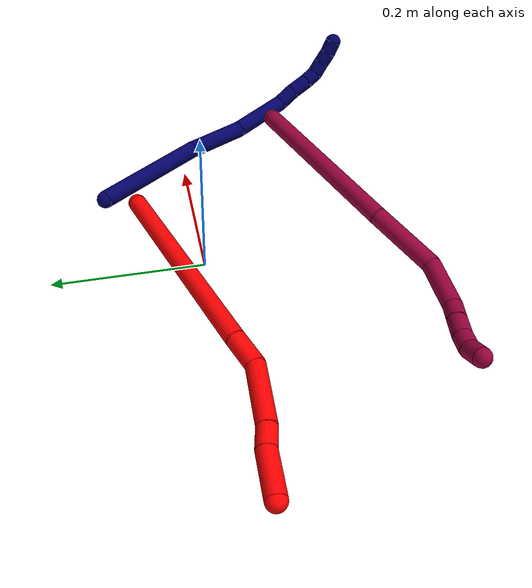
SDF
<sdf version="1.7">
 <world name="default">
  <model name="2">
   <static>0</static>
   <link name="2">
    <collision name="collision-cylinder-e_1_1_4">
     <pose>-0.134537 -0.057209 0.006968 1.4496 -1.16607 -1.05724</pose>
     <geometry><cylinder><radius>0.0125</radius><length>0.292722</length></cylinder></geometry>
     <surface>
      <friction><ode><mu>1.16</mu><mu2>1.16</mu2><slip1>0</slip1><slip2>0</slip2></ode></friction>
      <contact><ode><kp>1e+06</kp><kd>1</kd><max_vel>0</max_vel><min_depth>0.001</min_depth></ode></contact>
     </surface>
    </collision>
    <visual name="visual-cylinder-e_1_1_4">
     <pose>-0.134537 -0.057209 0.006968 1.4496 -1.16607 -1.05724</pose>
     <geometry><cylinder><radius>0.0125</radius><length>0.292722</length></cylinder></geometry>
     <material><ambient>1 0 0 1</ambient></material>
    </visual>
    <collision name="collision-cylinder-e_2_4_5">
     <pose>-0.288937 -0.12131 0.01206 1.83654 -1.22562 -1.48758</pose>
     <geometry><cylinder><radius>0.0125</radius><length>0.042216</length></cylinder></geometry>
     <surface>
      <friction><ode><mu>1.16</mu><mu2>1.16</mu2><slip1>0</slip1><slip2>0</slip2></ode></friction>
      <contact><ode><kp>1e+06</kp><kd>1</kd><max_vel>0</max_vel><min_depth>0.001</min_depth></ode></contact>
     </surface>
    </collision>
    <visual name="visual-cylinder-e_2_4_5">
     <pose>-0.288937 -0.12131 0.01206 1.83654 -1.22562 -1.48758</pose>
     <geometry><cylinder><radius>0.0125</radius><length>0.042216</length></cylinder></geometry>
     <material><ambient>1 0 0 1</ambient></material>
    </visual>
    <collision name="collision-cylinder-e_3_5_6">
     <pose>-0.346643 -0.13461 0.023579 0.446233 -1.19687 -0.306979</pose>
     <geometry><cylinder><radius>0.0125</radius><length>0.081304</length></cylinder></geometry>
     <surface>
      <friction><ode><mu>1.16</mu><mu2>1.16</mu2><slip1>0</slip1><slip2>0</slip2></ode></friction>
      <contact><ode><kp>1e+06</kp><kd>1</kd><max_vel>0</max_vel><min_depth>0.001</min_depth></ode></contact>
     </surface>
    </collision>
    <visual name="visual-cylinder-e_3_5_6">
     <pose>-0.346643 -0.13461 0.023579 0.446233 -1.19687 -0.306979</pose>
     <geometry><cylinder><radius>0.0125</radius><length>0.081304</length></cylinder></geometry>
     <material><ambient>1 0 0 1</ambient></material>
    </visual>
    <collision name="collision-cylinder-e_4_6_7">
     <pose>-0.396622 -0.140959 0.042822 -0.010066 -1.12175 0.006323</pose>
     <geometry><cylinder><radius>0.0125</radius><length>0.026944</length></cylinder></geometry>
     <surface>
      <friction><ode><mu>1.16</mu><mu2>1.16</mu2><slip1>0</slip1><slip2>0</slip2></ode></friction>
      <contact><ode><kp>1e+06</kp><kd>1</kd><max_vel>0</max_vel><min_depth>0.001</min_depth></ode></contact>
     </surface>
    </collision>
    <visual name="visual-cylinder-e_4_6_7">
     <pose>-0.396622 -0.140959 0.042822 -0.010066 -1.12175 0.006323</pose>
     <geometry><cylinder><radius>0.0125</radius><length>0.026944</length></cylinder></geometry>
     <material><ambient>1 0 0 1</ambient></material>
    </visual>
    <collision name="collision-cylinder-e_5_7_2">
     <pose>-0.435147 -0.14582 0.057963 0.486879 -1.19163 -0.333657</pose>
     <geometry><cylinder><radius>0.0125</radius><length>0.056814</length></cylinder></geometry>
     <surface>
      <friction><ode><mu>1.16</mu><mu2>1.16</mu2><slip1>0</slip1><slip2>0</slip2></ode></friction>
      <contact><ode><kp>1e+06</kp><kd>1</kd><max_vel>0</max_vel><min_depth>0.001</min_depth></ode></contact>
     </surface>
    </collision>
    <visual name="visual-cylinder-e_5_7_2">
     <pose>-0.435147 -0.14582 0.057963 0.486879 -1.19163 -0.333657</pose>
     <geometry><cylinder><radius>0.0125</radius><length>0.056814</length></cylinder></geometry>
     <material><ambient>1 0 0 1</ambient></material>
    </visual>
    <collision name="collision-sphere-2">
     <pose>-0.461537 -0.150739 0.067256 0 -0 0</pose>
     <geometry><sphere><radius>0.0125</radius></sphere></geometry>
     <surface>
      <friction><ode><mu>1.16</mu><mu2>1.16</mu2><slip1>0</slip1><slip2>0</slip2></ode></friction>
      <contact><ode><kp>1e+06</kp><kd>1</kd><max_vel>0</max_vel><min_depth>0.001</min_depth></ode></contact>
     </surface>
    </collision>
    <visual name="visual-sphere-2">
     <pose>-0.461537 -0.150739 0.067256 0 -0 0</pose>
     <geometry><sphere><radius>0.0125</radius></sphere></geometry>
     <material><ambient>1 0 0 1</ambient></material>
    </visual>
    <collision name="collision-sphere-7">
     <pose>-0.408758 -0.1409 0.04867 0 -0 0</pose>
     <geometry><sphere><radius>0.0125</radius></sphere></geometry>
     <surface>
      <friction><ode><mu>1.16</mu><mu2>1.16</mu2><slip1>0</slip1><slip2>0</slip2></ode></friction>
      <contact><ode><kp>1e+06</kp><kd>1</kd><max_vel>0</max_vel><min_depth>0.001</min_depth></ode></contact>
     </surface>
    </collision>
    <visual name="visual-sphere-7">
     <pose>-0.408758 -0.1409 0.04867 0 -0 0</pose>
     <geometry><sphere><radius>0.0125</radius></sphere></geometry>
     <material><ambient>1 0 0 1</ambient></material>
    </visual>
    <collision name="collision-sphere-6">
     <pose>-0.384486 -0.141018 0.036974 0 -0 0</pose>
     <geometry><sphere><radius>0.0125</radius></sphere></geometry>
     <surface>
      <friction><ode><mu>1.16</mu><mu2>1.16</mu2><slip1>0</slip1><slip2>0</slip2></ode></friction>
      <contact><ode><kp>1e+06</kp><kd>1</kd><max_vel>0</max_vel><min_depth>0.001</min_depth></ode></contact>
     </surface>
    </collision>
    <visual name="visual-sphere-6">
     <pose>-0.384486 -0.141018 0.036974 0 -0 0</pose>
     <geometry><sphere><radius>0.0125</radius></sphere></geometry>
     <material><ambient>1 0 0 1</ambient></material>
    </visual>
    <collision name="collision-sphere-5">
     <pose>-0.3088 -0.128201 0.010184 0 -0 0</pose>
     <geometry><sphere><radius>0.0125</radius></sphere></geometry>
     <surface>
      <friction><ode><mu>1.16</mu><mu2>1.16</mu2><slip1>0</slip1><slip2>0</slip2></ode></friction>
      <contact><ode><kp>1e+06</kp><kd>1</kd><max_vel>0</max_vel><min_depth>0.001</min_depth></ode></contact>
     </surface>
    </collision>
    <visual name="visual-sphere-5">
     <pose>-0.3088 -0.128201 0.010184 0 -0 0</pose>
     <geometry><sphere><radius>0.0125</radius></sphere></geometry>
     <material><ambient>1 0 0 1</ambient></material>
    </visual>
    <collision name="collision-sphere-1">
     <geometry><sphere><radius>0.0125</radius></sphere></geometry>
     <surface>
      <friction><ode><mu>1.16</mu><mu2>1.16</mu2><slip1>0</slip1><slip2>0</slip2></ode></friction>
      <contact><ode><kp>1e+06</kp><kd>1</kd><max_vel>0</max_vel><min_depth>0.001</min_depth></ode></contact>
     </surface>
    </collision>
    <visual name="visual-sphere-1">
     <geometry><sphere><radius>0.0125</radius></sphere></geometry>
     <material><ambient>1 0 0 1</ambient></material>
    </visual>
    <collision name="collision-sphere-4">
     <pose>-0.269073 -0.114418 0.013936 0 -0 0</pose>
     <geometry><sphere><radius>0.0125</radius></sphere></geometry>
     <surface>
      <friction><ode><mu>1.16</mu><mu2>1.16</mu2><slip1>0</slip1><slip2>0</slip2></ode></friction>
      <contact><ode><kp>1e+06</kp><kd>1</kd><max_vel>0</max_vel><min_depth>0.001</min_depth></ode></contact>
     </surface>
    </collision>
    <visual name="visual-sphere-4">
     <pose>-0.269073 -0.114418 0.013936 0 -0 0</pose>
     <geometry><sphere><radius>0.0125</radius></sphere></geometry>
     <material><ambient>1 0 0 1</ambient></material>
    </visual>
    <inertial>
     <pose>-0.230344 -0.089789 0.017825 0 -0 0</pose>
     <mass>0.5</mass>
     <inertia>
      <ixx>-0.000336</ixx>
      <ixy>0</ixy>
      <ixz>0</ixz>
      <iyy>0.001126</iyy>
      <iyz>0</iyz>
      <izz>0.002843</izz>
     </inertia>
    </inertial>
   </link>
   <pose>0.131443 0.076715 0.011492 -0.969111 -0.338057 0.131258</pose>
  </model>
  <model name="7">
   <static>0</static>
   <link name="7">
    <collision name="collision-cylinder-e_1_1_4">
     <pose>0.003735 0.001021 0.085104 -0.011993 0.04386 -0.000263</pose>
     <geometry><cylinder><radius>0.0125</radius><length>0.170385</length></cylinder></geometry>
     <surface>
      <friction><ode><mu>1.16</mu><mu2>1.16</mu2><slip1>0</slip1><slip2>0</slip2></ode></friction>
      <contact><ode><kp>1e+06</kp><kd>1</kd><max_vel>0</max_vel><min_depth>0.001</min_depth></ode></contact>
     </surface>
    </collision>
    <visual name="visual-cylinder-e_1_1_4">
     <pose>0.003735 0.001021 0.085104 -0.011993 0.04386 -0.000263</pose>
     <geometry><cylinder><radius>0.0125</radius><length>0.170385</length></cylinder></geometry>
     <material><ambient>0.003922 0 0.403922 1</ambient></material>
    </visual>
    <collision name="collision-cylinder-e_2_4_5">
     <pose>0.013713 -0.002404 0.214991 0.098933 0.13783 0.006834</pose>
     <geometry><cylinder><radius>0.0125</radius><length>0.090866</length></cylinder></geometry>
     <surface>
      <friction><ode><mu>1.16</mu><mu2>1.16</mu2><slip1>0</slip1><slip2>0</slip2></ode></friction>
      <contact><ode><kp>1e+06</kp><kd>1</kd><max_vel>0</max_vel><min_depth>0.001</min_depth></ode></contact>
     </surface>
    </collision>
    <visual name="visual-cylinder-e_2_4_5">
     <pose>0.013713 -0.002404 0.214991 0.098933 0.13783 0.006834</pose>
     <geometry><cylinder><radius>0.0125</radius><length>0.090866</length></cylinder></geometry>
     <material><ambient>0.003922 0 0.403922 1</ambient></material>
    </visual>
    <collision name="collision-cylinder-e_3_5_6">
     <pose>0.02038 -0.007811 0.309411 0.019392 0.008554 8.3e-05</pose>
     <geometry><cylinder><radius>0.0125</radius><length>0.099298</length></cylinder></geometry>
     <surface>
      <friction><ode><mu>1.16</mu><mu2>1.16</mu2><slip1>0</slip1><slip2>0</slip2></ode></friction>
      <contact><ode><kp>1e+06</kp><kd>1</kd><max_vel>0</max_vel><min_depth>0.001</min_depth></ode></contact>
     </surface>
    </collision>
    <visual name="visual-cylinder-e_3_5_6">
     <pose>0.02038 -0.007811 0.309411 0.019392 0.008554 8.3e-05</pose>
     <geometry><cylinder><radius>0.0125</radius><length>0.099298</length></cylinder></geometry>
     <material><ambient>0.003922 0 0.403922 1</ambient></material>
    </visual>
    <collision name="collision-cylinder-e_4_6_7">
     <pose>0.017732 -0.014946 0.372294 0.436065 -0.207221 -0.046068</pose>
     <geometry><cylinder><radius>0.0125</radius><length>0.029864</length></cylinder></geometry>
     <surface>
      <friction><ode><mu>1.16</mu><mu2>1.16</mu2><slip1>0</slip1><slip2>0</slip2></ode></friction>
      <contact><ode><kp>1e+06</kp><kd>1</kd><max_vel>0</max_vel><min_depth>0.001</min_depth></ode></contact>
     </surface>
    </collision>
    <visual name="visual-cylinder-e_4_6_7">
     <pose>0.017732 -0.014946 0.372294 0.436065 -0.207221 -0.046068</pose>
     <geometry><cylinder><radius>0.0125</radius><length>0.029864</length></cylinder></geometry>
     <material><ambient>0.003922 0 0.403922 1</ambient></material>
    </visual>
    <collision name="collision-cylinder-e_5_7_8">
     <pose>0.013212 -0.02731 0.398365 0.449749 -0.101336 -0.023199</pose>
     <geometry><cylinder><radius>0.0125</radius><length>0.028631</length></cylinder></geometry>
     <surface>
      <friction><ode><mu>1.16</mu><mu2>1.16</mu2><slip1>0</slip1><slip2>0</slip2></ode></friction>
      <contact><ode><kp>1e+06</kp><kd>1</kd><max_vel>0</max_vel><min_depth>0.001</min_depth></ode></contact>
     </surface>
    </collision>
    <visual name="visual-cylinder-e_5_7_8">
     <pose>0.013212 -0.02731 0.398365 0.449749 -0.101336 -0.023199</pose>
     <geometry><cylinder><radius>0.0125</radius><length>0.028631</length></cylinder></geometry>
     <material><ambient>0.003922 0 0.403922 1</ambient></material>
    </visual>
    <collision name="collision-cylinder-e_6_8_9">
     <pose>0.010051 -0.037112 0.420483 0.370692 -0.170115 -0.031971</pose>
     <geometry><cylinder><radius>0.0125</radius><length>0.02023</length></cylinder></geometry>
     <surface>
      <friction><ode><mu>1.16</mu><mu2>1.16</mu2><slip1>0</slip1><slip2>0</slip2></ode></friction>
      <contact><ode><kp>1e+06</kp><kd>1</kd><max_vel>0</max_vel><min_depth>0.001</min_depth></ode></contact>
     </surface>
    </collision>
    <visual name="visual-cylinder-e_6_8_9">
     <pose>0.010051 -0.037112 0.420483 0.370692 -0.170115 -0.031971</pose>
     <geometry><cylinder><radius>0.0125</radius><length>0.02023</length></cylinder></geometry>
     <material><ambient>0.003922 0 0.403922 1</ambient></material>
    </visual>
    <collision name="collision-cylinder-e_7_9_10">
     <pose>0.003388 -0.046209 0.436647 0.673611 -0.512838 -0.183097</pose>
     <geometry><cylinder><radius>0.0125</radius><length>0.020182</length></cylinder></geometry>
     <surface>
      <friction><ode><mu>1.16</mu><mu2>1.16</mu2><slip1>0</slip1><slip2>0</slip2></ode></friction>
      <contact><ode><kp>1e+06</kp><kd>1</kd><max_vel>0</max_vel><min_depth>0.001</min_depth></ode></contact>
     </surface>
    </collision>
    <visual name="visual-cylinder-e_7_9_10">
     <pose>0.003388 -0.046209 0.436647 0.673611 -0.512838 -0.183097</pose>
     <geometry><cylinder><radius>0.0125</radius><length>0.020182</length></cylinder></geometry>
     <material><ambient>0.003922 0 0.403922 1</ambient></material>
    </visual>
    <collision name="collision-cylinder-e_8_10_11">
     <pose>-0.006213 -0.057984 0.449814 0.785047 -0.481444 -0.202567</pose>
     <geometry><cylinder><radius>0.0125</radius><length>0.020081</length></cylinder></geometry>
     <surface>
      <friction><ode><mu>1.16</mu><mu2>1.16</mu2><slip1>0</slip1><slip2>0</slip2></ode></friction>
      <contact><ode><kp>1e+06</kp><kd>1</kd><max_vel>0</max_vel><min_depth>0.001</min_depth></ode></contact>
     </surface>
    </collision>
    <visual name="visual-cylinder-e_8_10_11">
     <pose>-0.006213 -0.057984 0.449814 0.785047 -0.481444 -0.202567</pose>
     <geometry><cylinder><radius>0.0125</radius><length>0.020081</length></cylinder></geometry>
     <material><ambient>0.003922 0 0.403922 1</ambient></material>
    </visual>
    <collision name="collision-cylinder-e_9_11_2">
     <pose>-0.016811 -0.070614 0.461504 0.865735 -0.620466 -0.294142</pose>
     <geometry><cylinder><radius>0.0125</radius><length>0.020463</length></cylinder></geometry>
     <surface>
      <friction><ode><mu>1.16</mu><mu2>1.16</mu2><slip1>0</slip1><slip2>0</slip2></ode></friction>
      <contact><ode><kp>1e+06</kp><kd>1</kd><max_vel>0</max_vel><min_depth>0.001</min_depth></ode></contact>
     </surface>
    </collision>
    <visual name="visual-cylinder-e_9_11_2">
     <pose>-0.016811 -0.070614 0.461504 0.865735 -0.620466 -0.294142</pose>
     <geometry><cylinder><radius>0.0125</radius><length>0.020463</length></cylinder></geometry>
     <material><ambient>0.003922 0 0.403922 1</ambient></material>
    </visual>
    <collision name="collision-sphere-2">
     <pose>-0.022759 -0.076954 0.466899 0 -0 0</pose>
     <geometry><sphere><radius>0.0125</radius></sphere></geometry>
     <surface>
      <friction><ode><mu>1.16</mu><mu2>1.16</mu2><slip1>0</slip1><slip2>0</slip2></ode></friction>
      <contact><ode><kp>1e+06</kp><kd>1</kd><max_vel>0</max_vel><min_depth>0.001</min_depth></ode></contact>
     </surface>
    </collision>
    <visual name="visual-sphere-2">
     <pose>-0.022759 -0.076954 0.466899 0 -0 0</pose>
     <geometry><sphere><radius>0.0125</radius></sphere></geometry>
     <material><ambient>0.003922 0 0.403922 1</ambient></material>
    </visual>
    <collision name="collision-sphere-11">
     <pose>-0.010862 -0.064275 0.456109 0 -0 0</pose>
     <geometry><sphere><radius>0.0125</radius></sphere></geometry>
     <surface>
      <friction><ode><mu>1.16</mu><mu2>1.16</mu2><slip1>0</slip1><slip2>0</slip2></ode></friction>
      <contact><ode><kp>1e+06</kp><kd>1</kd><max_vel>0</max_vel><min_depth>0.001</min_depth></ode></contact>
     </surface>
    </collision>
    <visual name="visual-sphere-11">
     <pose>-0.010862 -0.064275 0.456109 0 -0 0</pose>
     <geometry><sphere><radius>0.0125</radius></sphere></geometry>
     <material><ambient>0.003922 0 0.403922 1</ambient></material>
    </visual>
    <collision name="collision-sphere-10">
     <pose>-0.001563 -0.051694 0.443519 0 -0 0</pose>
     <geometry><sphere><radius>0.0125</radius></sphere></geometry>
     <surface>
      <friction><ode><mu>1.16</mu><mu2>1.16</mu2><slip1>0</slip1><slip2>0</slip2></ode></friction>
      <contact><ode><kp>1e+06</kp><kd>1</kd><max_vel>0</max_vel><min_depth>0.001</min_depth></ode></contact>
     </surface>
    </collision>
    <visual name="visual-sphere-10">
     <pose>-0.001563 -0.051694 0.443519 0 -0 0</pose>
     <geometry><sphere><radius>0.0125</radius></sphere></geometry>
     <material><ambient>0.003922 0 0.403922 1</ambient></material>
    </visual>
    <collision name="collision-sphere-9">
     <pose>0.008339 -0.040724 0.429775 0 -0 0</pose>
     <geometry><sphere><radius>0.0125</radius></sphere></geometry>
     <surface>
      <friction><ode><mu>1.16</mu><mu2>1.16</mu2><slip1>0</slip1><slip2>0</slip2></ode></friction>
      <contact><ode><kp>1e+06</kp><kd>1</kd><max_vel>0</max_vel><min_depth>0.001</min_depth></ode></contact>
     </surface>
    </collision>
    <visual name="visual-sphere-9">
     <pose>0.008339 -0.040724 0.429775 0 -0 0</pose>
     <geometry><sphere><radius>0.0125</radius></sphere></geometry>
     <material><ambient>0.003922 0 0.403922 1</ambient></material>
    </visual>
    <collision name="collision-sphere-4">
     <pose>0.007471 0.002041 0.170209 0 -0 0</pose>
     <geometry><sphere><radius>0.0125</radius></sphere></geometry>
     <surface>
      <friction><ode><mu>1.16</mu><mu2>1.16</mu2><slip1>0</slip1><slip2>0</slip2></ode></friction>
      <contact><ode><kp>1e+06</kp><kd>1</kd><max_vel>0</max_vel><min_depth>0.001</min_depth></ode></contact>
     </surface>
    </collision>
    <visual name="visual-sphere-4">
     <pose>0.007471 0.002041 0.170209 0 -0 0</pose>
     <geometry><sphere><radius>0.0125</radius></sphere></geometry>
     <material><ambient>0.003922 0 0.403922 1</ambient></material>
    </visual>
    <collision name="collision-sphere-1">
     <geometry><sphere><radius>0.0125</radius></sphere></geometry>
     <surface>
      <friction><ode><mu>1.16</mu><mu2>1.16</mu2><slip1>0</slip1><slip2>0</slip2></ode></friction>
      <contact><ode><kp>1e+06</kp><kd>1</kd><max_vel>0</max_vel><min_depth>0.001</min_depth></ode></contact>
     </surface>
    </collision>
    <visual name="visual-sphere-1">
     <geometry><sphere><radius>0.0125</radius></sphere></geometry>
     <material><ambient>0.003922 0 0.403922 1</ambient></material>
    </visual>
    <collision name="collision-sphere-8">
     <pose>0.011764 -0.033501 0.411191 0 -0 0</pose>
     <geometry><sphere><radius>0.0125</radius></sphere></geometry>
     <surface>
      <friction><ode><mu>1.16</mu><mu2>1.16</mu2><slip1>0</slip1><slip2>0</slip2></ode></friction>
      <contact><ode><kp>1e+06</kp><kd>1</kd><max_vel>0</max_vel><min_depth>0.001</min_depth></ode></contact>
     </surface>
    </collision>
    <visual name="visual-sphere-8">
     <pose>0.011764 -0.033501 0.411191 0 -0 0</pose>
     <geometry><sphere><radius>0.0125</radius></sphere></geometry>
     <material><ambient>0.003922 0 0.403922 1</ambient></material>
    </visual>
    <collision name="collision-sphere-5">
     <pose>0.019955 -0.006849 0.259773 0 -0 0</pose>
     <geometry><sphere><radius>0.0125</radius></sphere></geometry>
     <surface>
      <friction><ode><mu>1.16</mu><mu2>1.16</mu2><slip1>0</slip1><slip2>0</slip2></ode></friction>
      <contact><ode><kp>1e+06</kp><kd>1</kd><max_vel>0</max_vel><min_depth>0.001</min_depth></ode></contact>
     </surface>
    </collision>
    <visual name="visual-sphere-5">
     <pose>0.019955 -0.006849 0.259773 0 -0 0</pose>
     <geometry><sphere><radius>0.0125</radius></sphere></geometry>
     <material><ambient>0.003922 0 0.403922 1</ambient></material>
    </visual>
    <collision name="collision-sphere-6">
     <pose>0.020805 -0.008774 0.359049 0 -0 0</pose>
     <geometry><sphere><radius>0.0125</radius></sphere></geometry>
     <surface>
      <friction><ode><mu>1.16</mu><mu2>1.16</mu2><slip1>0</slip1><slip2>0</slip2></ode></friction>
      <contact><ode><kp>1e+06</kp><kd>1</kd><max_vel>0</max_vel><min_depth>0.001</min_depth></ode></contact>
     </surface>
    </collision>
    <visual name="visual-sphere-6">
     <pose>0.020805 -0.008774 0.359049 0 -0 0</pose>
     <geometry><sphere><radius>0.0125</radius></sphere></geometry>
     <material><ambient>0.003922 0 0.403922 1</ambient></material>
    </visual>
    <collision name="collision-sphere-7">
     <pose>0.01466 -0.021118 0.38554 0 -0 0</pose>
     <geometry><sphere><radius>0.0125</radius></sphere></geometry>
     <surface>
      <friction><ode><mu>1.16</mu><mu2>1.16</mu2><slip1>0</slip1><slip2>0</slip2></ode></friction>
      <contact><ode><kp>1e+06</kp><kd>1</kd><max_vel>0</max_vel><min_depth>0.001</min_depth></ode></contact>
     </surface>
    </collision>
    <visual name="visual-sphere-7">
     <pose>0.01466 -0.021118 0.38554 0 -0 0</pose>
     <geometry><sphere><radius>0.0125</radius></sphere></geometry>
     <material><ambient>0.003922 0 0.403922 1</ambient></material>
    </visual>
    <inertial>
     <pose>0.009234 -0.012682 0.246158 0 -0 0</pose>
     <mass>0.5</mass>
     <inertia>
      <ixx>0.000578</ixx>
      <ixy>0</ixy>
      <ixz>0</ixz>
      <iyy>0.000574</iyy>
      <iyz>0</iyz>
      <izz>2.1e-05</izz>
     </inertia>
    </inertial>
   </link>
   <pose>0.146712 0.120763 0.012548 -1.51379 0.861631 -2.46021</pose>
  </model>
  <model name="8">
   <static>0</static>
   <link name="8">
    <collision name="collision-cylinder-e_1_1_4">
     <pose>-1.7e-05 -2.3e-05 0.121596 0.000193 -0.000142 0</pose>
     <geometry><cylinder><radius>0.0125</radius><length>0.243192</length></cylinder></geometry>
     <surface>
      <friction><ode><mu>1.16</mu><mu2>1.16</mu2><slip1>0</slip1><slip2>0</slip2></ode></friction>
      <contact><ode><kp>1e+06</kp><kd>1</kd><max_vel>0</max_vel><min_depth>0.001</min_depth></ode></contact>
     </surface>
    </collision>
    <visual name="visual-cylinder-e_1_1_4">
     <pose>-1.7e-05 -2.3e-05 0.121596 0.000193 -0.000142 0</pose>
     <geometry><cylinder><radius>0.0125</radius><length>0.243192</length></cylinder></geometry>
     <material><ambient>0.584314 0 0.227451 1</ambient></material>
    </visual>
    <collision name="collision-cylinder-e_2_4_5">
     <pose>0.000181 -0.009475 0.289835 0.199458 0.00454 0.000454</pose>
     <geometry><cylinder><radius>0.0125</radius><length>0.095172</length></cylinder></geometry>
     <surface>
      <friction><ode><mu>1.16</mu><mu2>1.16</mu2><slip1>0</slip1><slip2>0</slip2></ode></friction>
      <contact><ode><kp>1e+06</kp><kd>1</kd><max_vel>0</max_vel><min_depth>0.001</min_depth></ode></contact>
     </surface>
    </collision>
    <visual name="visual-cylinder-e_2_4_5">
     <pose>0.000181 -0.009475 0.289835 0.199458 0.00454 0.000454</pose>
     <geometry><cylinder><radius>0.0125</radius><length>0.095172</length></cylinder></geometry>
     <material><ambient>0.584314 0 0.227451 1</ambient></material>
    </visual>
    <collision name="collision-cylinder-e_3_5_6">
     <pose>-0.008894 -0.013714 0.367202 -0.167346 -0.289774 0.024473</pose>
     <geometry><cylinder><radius>0.0125</radius><length>0.065032</length></cylinder></geometry>
     <surface>
      <friction><ode><mu>1.16</mu><mu2>1.16</mu2><slip1>0</slip1><slip2>0</slip2></ode></friction>
      <contact><ode><kp>1e+06</kp><kd>1</kd><max_vel>0</max_vel><min_depth>0.001</min_depth></ode></contact>
     </surface>
    </collision>
    <visual name="visual-cylinder-e_3_5_6">
     <pose>-0.008894 -0.013714 0.367202 -0.167346 -0.289774 0.024473</pose>
     <geometry><cylinder><radius>0.0125</radius><length>0.065032</length></cylinder></geometry>
     <material><ambient>0.584314 0 0.227451 1</ambient></material>
    </visual>
    <collision name="collision-cylinder-e_4_6_7">
     <pose>-0.021999 -0.001425 0.408374 -0.596813 -0.293293 0.090804</pose>
     <geometry><cylinder><radius>0.0125</radius><length>0.026386</length></cylinder></geometry>
     <surface>
      <friction><ode><mu>1.16</mu><mu2>1.16</mu2><slip1>0</slip1><slip2>0</slip2></ode></friction>
      <contact><ode><kp>1e+06</kp><kd>1</kd><max_vel>0</max_vel><min_depth>0.001</min_depth></ode></contact>
     </surface>
    </collision>
    <visual name="visual-cylinder-e_4_6_7">
     <pose>-0.021999 -0.001425 0.408374 -0.596813 -0.293293 0.090804</pose>
     <geometry><cylinder><radius>0.0125</radius><length>0.026386</length></cylinder></geometry>
     <material><ambient>0.584314 0 0.227451 1</ambient></material>
    </visual>
    <collision name="collision-cylinder-e_5_7_8">
     <pose>-0.030113 0.011032 0.429792 -0.454388 -0.338584 0.078991</pose>
     <geometry><cylinder><radius>0.0125</radius><length>0.025892</length></cylinder></geometry>
     <surface>
      <friction><ode><mu>1.16</mu><mu2>1.16</mu2><slip1>0</slip1><slip2>0</slip2></ode></friction>
      <contact><ode><kp>1e+06</kp><kd>1</kd><max_vel>0</max_vel><min_depth>0.001</min_depth></ode></contact>
     </surface>
    </collision>
    <visual name="visual-cylinder-e_5_7_8">
     <pose>-0.030113 0.011032 0.429792 -0.454388 -0.338584 0.078991</pose>
     <geometry><cylinder><radius>0.0125</radius><length>0.025892</length></cylinder></geometry>
     <material><ambient>0.584314 0 0.227451 1</ambient></material>
    </visual>
    <collision name="collision-cylinder-e_6_8_9">
     <pose>-0.036597 0.02063 0.449912 -0.433874 -0.21331 0.047185</pose>
     <geometry><cylinder><radius>0.0125</radius><length>0.020632</length></cylinder></geometry>
     <surface>
      <friction><ode><mu>1.16</mu><mu2>1.16</mu2><slip1>0</slip1><slip2>0</slip2></ode></friction>
      <contact><ode><kp>1e+06</kp><kd>1</kd><max_vel>0</max_vel><min_depth>0.001</min_depth></ode></contact>
     </surface>
    </collision>
    <visual name="visual-cylinder-e_6_8_9">
     <pose>-0.036597 0.02063 0.449912 -0.433874 -0.21331 0.047185</pose>
     <geometry><cylinder><radius>0.0125</radius><length>0.020632</length></cylinder></geometry>
     <material><ambient>0.584314 0 0.227451 1</ambient></material>
    </visual>
    <collision name="collision-cylinder-e_7_9_2">
     <pose>-0.036794 0.030739 0.469156 -0.526662 0.168508 -0.045528</pose>
     <geometry><cylinder><radius>0.0125</radius><length>0.023692</length></cylinder></geometry>
     <surface>
      <friction><ode><mu>1.16</mu><mu2>1.16</mu2><slip1>0</slip1><slip2>0</slip2></ode></friction>
      <contact><ode><kp>1e+06</kp><kd>1</kd><max_vel>0</max_vel><min_depth>0.001</min_depth></ode></contact>
     </surface>
    </collision>
    <visual name="visual-cylinder-e_7_9_2">
     <pose>-0.036794 0.030739 0.469156 -0.526662 0.168508 -0.045528</pose>
     <geometry><cylinder><radius>0.0125</radius><length>0.023692</length></cylinder></geometry>
     <material><ambient>0.584314 0 0.227451 1</ambient></material>
    </visual>
    <collision name="collision-sphere-2">
     <pose>-0.034808 0.036609 0.479252 0 -0 0</pose>
     <geometry><sphere><radius>0.0125</radius></sphere></geometry>
     <surface>
      <friction><ode><mu>1.16</mu><mu2>1.16</mu2><slip1>0</slip1><slip2>0</slip2></ode></friction>
      <contact><ode><kp>1e+06</kp><kd>1</kd><max_vel>0</max_vel><min_depth>0.001</min_depth></ode></contact>
     </surface>
    </collision>
    <visual name="visual-sphere-2">
     <pose>-0.034808 0.036609 0.479252 0 -0 0</pose>
     <geometry><sphere><radius>0.0125</radius></sphere></geometry>
     <material><ambient>0.584314 0 0.227451 1</ambient></material>
    </visual>
    <collision name="collision-sphere-9">
     <pose>-0.038781 0.024869 0.459061 0 -0 0</pose>
     <geometry><sphere><radius>0.0125</radius></sphere></geometry>
     <surface>
      <friction><ode><mu>1.16</mu><mu2>1.16</mu2><slip1>0</slip1><slip2>0</slip2></ode></friction>
      <contact><ode><kp>1e+06</kp><kd>1</kd><max_vel>0</max_vel><min_depth>0.001</min_depth></ode></contact>
     </surface>
    </collision>
    <visual name="visual-sphere-9">
     <pose>-0.038781 0.024869 0.459061 0 -0 0</pose>
     <geometry><sphere><radius>0.0125</radius></sphere></geometry>
     <material><ambient>0.584314 0 0.227451 1</ambient></material>
    </visual>
    <collision name="collision-sphere-4">
     <pose>-3.5e-05 -4.7e-05 0.243192 0 -0 0</pose>
     <geometry><sphere><radius>0.0125</radius></sphere></geometry>
     <surface>
      <friction><ode><mu>1.16</mu><mu2>1.16</mu2><slip1>0</slip1><slip2>0</slip2></ode></friction>
      <contact><ode><kp>1e+06</kp><kd>1</kd><max_vel>0</max_vel><min_depth>0.001</min_depth></ode></contact>
     </surface>
    </collision>
    <visual name="visual-sphere-4">
     <pose>-3.5e-05 -4.7e-05 0.243192 0 -0 0</pose>
     <geometry><sphere><radius>0.0125</radius></sphere></geometry>
     <material><ambient>0.584314 0 0.227451 1</ambient></material>
    </visual>
    <collision name="collision-sphere-1">
     <geometry><sphere><radius>0.0125</radius></sphere></geometry>
     <surface>
      <friction><ode><mu>1.16</mu><mu2>1.16</mu2><slip1>0</slip1><slip2>0</slip2></ode></friction>
      <contact><ode><kp>1e+06</kp><kd>1</kd><max_vel>0</max_vel><min_depth>0.001</min_depth></ode></contact>
     </surface>
    </collision>
    <visual name="visual-sphere-1">
     <geometry><sphere><radius>0.0125</radius></sphere></geometry>
     <material><ambient>0.584314 0 0.227451 1</ambient></material>
    </visual>
    <collision name="collision-sphere-8">
     <pose>-0.034413 0.016392 0.440764 0 -0 0</pose>
     <geometry><sphere><radius>0.0125</radius></sphere></geometry>
     <surface>
      <friction><ode><mu>1.16</mu><mu2>1.16</mu2><slip1>0</slip1><slip2>0</slip2></ode></friction>
      <contact><ode><kp>1e+06</kp><kd>1</kd><max_vel>0</max_vel><min_depth>0.001</min_depth></ode></contact>
     </surface>
    </collision>
    <visual name="visual-sphere-8">
     <pose>-0.034413 0.016392 0.440764 0 -0 0</pose>
     <geometry><sphere><radius>0.0125</radius></sphere></geometry>
     <material><ambient>0.584314 0 0.227451 1</ambient></material>
    </visual>
    <collision name="collision-sphere-5">
     <pose>0.000397 -0.018904 0.336477 0 -0 0</pose>
     <geometry><sphere><radius>0.0125</radius></sphere></geometry>
     <surface>
      <friction><ode><mu>1.16</mu><mu2>1.16</mu2><slip1>0</slip1><slip2>0</slip2></ode></friction>
      <contact><ode><kp>1e+06</kp><kd>1</kd><max_vel>0</max_vel><min_depth>0.001</min_depth></ode></contact>
     </surface>
    </collision>
    <visual name="visual-sphere-5">
     <pose>0.000397 -0.018904 0.336477 0 -0 0</pose>
     <geometry><sphere><radius>0.0125</radius></sphere></geometry>
     <material><ambient>0.584314 0 0.227451 1</ambient></material>
    </visual>
    <collision name="collision-sphere-6">
     <pose>-0.018185 -0.008523 0.397927 0 -0 0</pose>
     <geometry><sphere><radius>0.0125</radius></sphere></geometry>
     <surface>
      <friction><ode><mu>1.16</mu><mu2>1.16</mu2><slip1>0</slip1><slip2>0</slip2></ode></friction>
      <contact><ode><kp>1e+06</kp><kd>1</kd><max_vel>0</max_vel><min_depth>0.001</min_depth></ode></contact>
     </surface>
    </collision>
    <visual name="visual-sphere-6">
     <pose>-0.018185 -0.008523 0.397927 0 -0 0</pose>
     <geometry><sphere><radius>0.0125</radius></sphere></geometry>
     <material><ambient>0.584314 0 0.227451 1</ambient></material>
    </visual>
    <collision name="collision-sphere-7">
     <pose>-0.025813 0.005673 0.41882 0 -0 0</pose>
     <geometry><sphere><radius>0.0125</radius></sphere></geometry>
     <surface>
      <friction><ode><mu>1.16</mu><mu2>1.16</mu2><slip1>0</slip1><slip2>0</slip2></ode></friction>
      <contact><ode><kp>1e+06</kp><kd>1</kd><max_vel>0</max_vel><min_depth>0.001</min_depth></ode></contact>
     </surface>
    </collision>
    <visual name="visual-sphere-7">
     <pose>-0.025813 0.005673 0.41882 0 -0 0</pose>
     <geometry><sphere><radius>0.0125</radius></sphere></geometry>
     <material><ambient>0.584314 0 0.227451 1</ambient></material>
    </visual>
    <inertial>
     <pose>-0.007105 -0.000795 0.246675 0 -0 0</pose>
     <mass>0.5</mass>
     <inertia>
      <ixx>0.001315</ixx>
      <ixy>0</ixy>
      <ixz>0</ixz>
      <iyy>0.001319</iyy>
      <iyz>0</iyz>
      <izz>5.3e-05</izz>
     </inertia>
    </inertial>
   </link>
   <pose>0.226602 -0.139448 0.067496 1.69439 -0.726709 -1.25265</pose>
  </model>
 </world>
</sdf>
